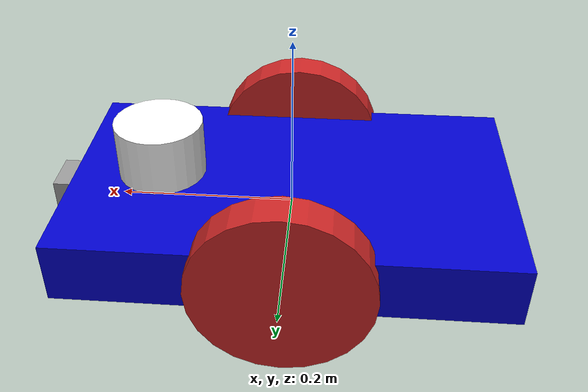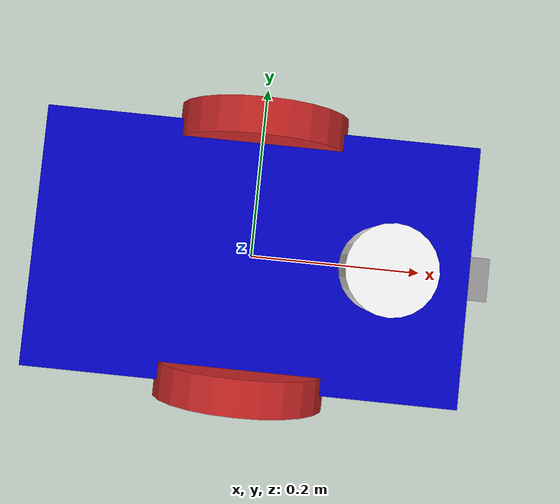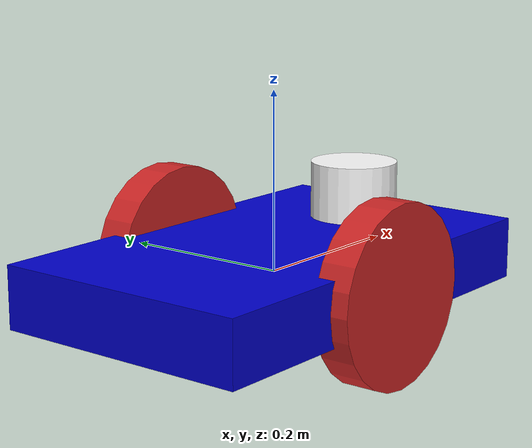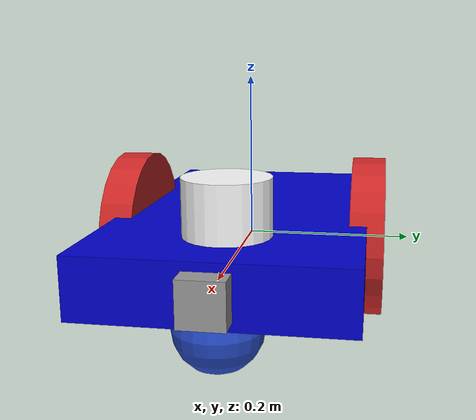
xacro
<?xml version="1.0" ?>
<robot name="robot" xmlns:xacro="http://www.ros.org/wiki/xacro">
    <xacro:include filename="$(find roscourse_2024_project_scene)/models/my_robot/urdf/materials.xacro" />
    <xacro:include filename="$(find roscourse_2024_project_scene)/models/my_robot/urdf/my_robot.gazebo" />
    <xacro:include filename="$(find roscourse_2024_project_scene)/models/my_robot/urdf/macros.xacro" />

    <link name="link_chassis">
        <!-- pose and inertial -->
        <pose>0 0 0.1 0 0 0</pose>
        <inertial>
            <mass value="4"/>
            <origin rpy="0 0 0" xyz="0 0 0.1"/>
            <inertia ixx="0.0395416666667" ixy="0" ixz="0" iyy="0.106208333333" iyz="0" izz="0.106208333333"/>
        </inertial>
        <!-- body -->
        <collision name="collision_chassis">
            <geometry>
                <box size="0.5 0.3 0.07"/>
            </geometry>
        </collision>
        <visual>
            <origin rpy="0 0 0" xyz="0 0 0"/>
            <geometry>
                <box size="0.5 0.3 0.07"/>
            </geometry>
            <material name="blue"/>
        </visual>
        <!-- caster front -->
        <collision name="caster_front_collision">
            <origin rpy=" 0 0 0" xyz="0.35 0 -0.05"/>
            <geometry>
                <sphere radius="0.05"/>
            </geometry>
            <surface>
                <friction>
                    <ode>
                        <mu>0</mu>
                        <mu2>0</mu2>
                        <slip1>1.0</slip1>
                        <slip2>1.0</slip2>
                    </ode>
                </friction>
            </surface>
        </collision>
        <visual name="caster_front_visual">
            <origin rpy=" 0 0 0" xyz="0.2 0 -0.05"/>
            <geometry>
                <sphere radius="0.05"/>
            </geometry>
        </visual>
    </link>

    <link name='camera'>
        <visual name='camera_visual'>
            <origin xyz="0 0 0" rpy=" 0 0 0"/>
            <geometry>
                <box size=".05 .05 .05"/>
            </geometry>
            <material name="gray"/>
        </visual>
    </link>
    <joint type="fixed" name="camera_joint">
        <origin xyz="0.25 0 0." rpy="0 0 0"/>
        <child link="camera"/>
        <parent link="link_chassis"/>
    </joint>

    <link name="sensor_laser">
        <inertial>
            <origin xyz="0 0 0" rpy="0 0 0" />
            <mass value="1.5" />
            <xacro:cylinder_inertia mass="1" r="0.05" l="0.1" />
        </inertial>

        <visual>
            <origin xyz="0 0 0" rpy="0 0 0" />
            <geometry>
                <cylinder radius="0.05" length="0.1"/>
            </geometry>
            <material name="white" />
        </visual>

        <collision>
            <origin xyz="0 0 0" rpy="0 0 0"/>
            <geometry>
                <cylinder radius="0.05" length="0.1"/>
            </geometry>
        </collision>
    </link>

    <joint name="joint_sensor_laser" type="fixed">
    <origin xyz="0.15 0 0.05" rpy="0 0 0"/>
    <parent link="link_chassis"/>
    <child link="sensor_laser"/>
  </joint>

    <xacro:link_wheel name="link_right_wheel" />
    <xacro:joint_wheel name="joint_right_wheel" child="link_right_wheel" origin_xyz="0 0.15 0" />

    <xacro:link_wheel name="link_left_wheel" />
    <xacro:joint_wheel name="joint_left_wheel" child="link_left_wheel" origin_xyz="0 -0.15 0" />

</robot>

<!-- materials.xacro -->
<robot>

  <material name="black">
    <color rgba="0.0 0.0 0.0 1.0"/>
  </material>

  <material name="blue">
    <color rgba="0.0 0.0 0.8 1.0"/>
  </material>

  <material name="green">
    <color rgba="${30/255} ${255/255} ${30/255} 1.0"/>
  </material>

  <material name="grey">
    <color rgba="0.2 0.2 0.2 1.0"/>
  </material>

  <material name="orange">
    <color rgba="${255/255} ${108/255} ${10/255} 1.0"/>
  </material>

  <material name="brown">
    <color rgba="${222/255} ${207/255} ${195/255} 1.0"/>
  </material>

  <material name="red">
    <color rgba="0.8 0.0 0.0 1.0"/>
  </material>

  <material name="white">
    <color rgba="1.0 1.0 1.0 1.0"/>
  </material>

</robot>

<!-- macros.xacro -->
<robot xmlns:xacro="http://www.ros.org/wiki/xacro">
    <xacro:macro name="link_wheel" params="name">
        <link name="${name}">
            <inertial>
              <mass value="4.2"/>
              <origin rpy="0 1.5707 1.5707" xyz="0 0 0"/>
              <inertia ixx="0.000526666666667" ixy="0" ixz="0" iyy="0.000526666666667" iyz="0" izz="0.001"/>
            </inertial>
            <collision name="link_right_wheel_collision">
              <origin rpy="0 1.5707 1.5707" xyz="0 0 0"/>
              <geometry>
                <cylinder length="0.04" radius="0.1"/>
              </geometry>
            </collision>
            <visual name="${name}_visual">
              <origin rpy="0 1.5707 1.5707" xyz="0 0 0"/>
              <geometry>
                <cylinder length="0.04" radius="0.1"/>
              </geometry>
            </visual>
        </link>
    </xacro:macro>

    <xacro:macro name="joint_wheel" params="name child origin_xyz">
      <joint name="${name}" type="continuous">
        <origin rpy="0 0 0" xyz="${origin_xyz}"/>
        <child link="${child}"/>
        <parent link="link_chassis"/>
        <axis rpy="0 0 0" xyz="0 1 0"/>
        <limit effort="100" velocity="50"/>
        <joint_properties damping="1.0" friction="1.0"/>
      </joint>
    </xacro:macro>

    <xacro:macro name="cylinder_inertia" params="mass r l">
        <inertia  ixx="${mass*(3*r*r+l*l)/12}" ixy = "0" ixz = "0"
                  iyy="${mass*(3*r*r+l*l)/12}" iyz = "0"
                  izz="${mass*(r*r)/2}" />
    </xacro:macro>
</robot>
